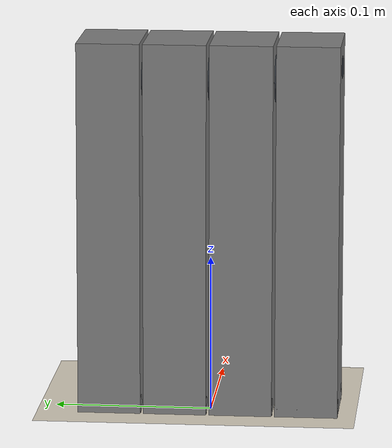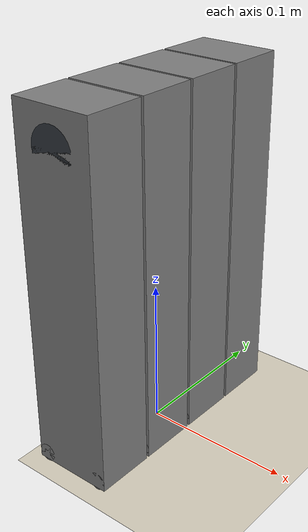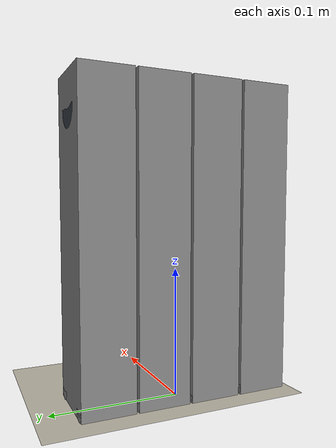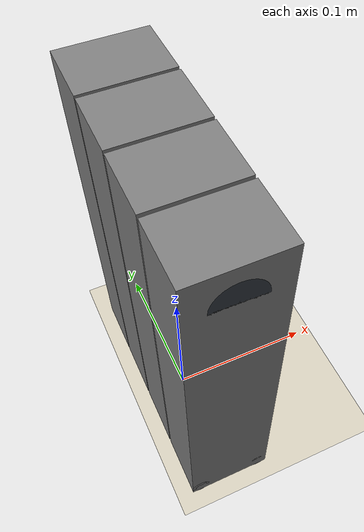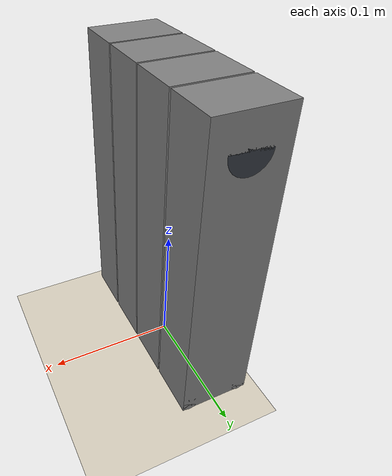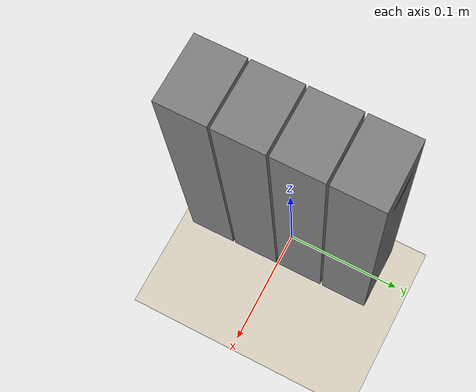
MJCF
<mujoco model="tars_wheel">
  <compiler angle="radian"/>
  <option timestep="0.002" gravity="0 0 -9.81"/>
  <default>
    <geom friction="0.9 0.02 0.001"/>
  </default>

  <worldbody>
    <geom name="floor" type="plane" size="30 30 0.1" friction="1.0 0.02 0.001" rgba="0.85 0.82 0.75 1"/>
    <light pos="0 0 3" dir="0 0 -1"/>

    <body name="hub" pos="0 0 0.2170">
      <freejoint/>
      <geom type="cylinder" size="0.0150 0.0830" euler="1.5708 0 0"
            mass="0.45" rgba="0.2 0.22 0.25 1"/>

      <body name="slab0" pos="0 -0.0630 0">
        <joint name="slab0_hinge" type="hinge" axis="0 1 0" limited="false"
               damping="0.05" frictionloss="0.15"/>
        <geom type="box" size="0.0275 0.0200 0.1195" pos="0 0 -0.0945" mass="0.21"/>
        <geom type="cylinder" size="0.0060 0.0200" pos="-0.0215 0 -0.2090" euler="1.5708 0 0" mass="0.005" friction="1.3 0.02 0.001"/>
        <geom type="cylinder" size="0.0060 0.0200" pos="0.0215 0 -0.2090" euler="1.5708 0 0" mass="0.005" friction="1.3 0.02 0.001"/>
      </body>
      <body name="slab1" pos="0 -0.0210 0">
        <joint name="slab1_hinge" type="hinge" axis="0 1 0" limited="false"
               damping="0.05" frictionloss="0.15"/>
        <geom type="box" size="0.0275 0.0200 0.1195" pos="0 0 -0.0945" mass="0.21"/>
        <geom type="cylinder" size="0.0060 0.0200" pos="-0.0215 0 -0.2090" euler="1.5708 0 0" mass="0.005" friction="1.3 0.02 0.001"/>
        <geom type="cylinder" size="0.0060 0.0200" pos="0.0215 0 -0.2090" euler="1.5708 0 0" mass="0.005" friction="1.3 0.02 0.001"/>
      </body>
      <body name="slab2" pos="0 0.0210 0">
        <joint name="slab2_hinge" type="hinge" axis="0 1 0" limited="false"
               damping="0.05" frictionloss="0.15"/>
        <geom type="box" size="0.0275 0.0200 0.1195" pos="0 0 -0.0945" mass="0.21"/>
        <geom type="cylinder" size="0.0060 0.0200" pos="-0.0215 0 -0.2090" euler="1.5708 0 0" mass="0.005" friction="1.3 0.02 0.001"/>
        <geom type="cylinder" size="0.0060 0.0200" pos="0.0215 0 -0.2090" euler="1.5708 0 0" mass="0.005" friction="1.3 0.02 0.001"/>
      </body>
      <body name="slab3" pos="0 0.0630 0">
        <joint name="slab3_hinge" type="hinge" axis="0 1 0" limited="false"
               damping="0.05" frictionloss="0.15"/>
        <geom type="box" size="0.0275 0.0200 0.1195" pos="0 0 -0.0945" mass="0.21"/>
        <geom type="cylinder" size="0.0060 0.0200" pos="-0.0215 0 -0.2090" euler="1.5708 0 0" mass="0.005" friction="1.3 0.02 0.001"/>
        <geom type="cylinder" size="0.0060 0.0200" pos="0.0215 0 -0.2090" euler="1.5708 0 0" mass="0.005" friction="1.3 0.02 0.001"/>
      </body>
    </body>
  </worldbody>

  <actuator>
    <!-- intvelocity = bus servo in continuous mode: tracks a position target
         that advances at the commanded velocity; HOLDS position at cmd=0 -->
    <intvelocity name="w0" joint="slab0_hinge" kp="60" kv="3" actrange="-1000 1000" ctrlrange="-7.0 7.0" forcerange="-1.7 1.7"/>
    <intvelocity name="w1" joint="slab1_hinge" kp="60" kv="3" actrange="-1000 1000" ctrlrange="-7.0 7.0" forcerange="-1.7 1.7"/>
    <intvelocity name="w2" joint="slab2_hinge" kp="60" kv="3" actrange="-1000 1000" ctrlrange="-7.0 7.0" forcerange="-1.7 1.7"/>
    <intvelocity name="w3" joint="slab3_hinge" kp="60" kv="3" actrange="-1000 1000" ctrlrange="-7.0 7.0" forcerange="-1.7 1.7"/>
  </actuator>
</mujoco>
